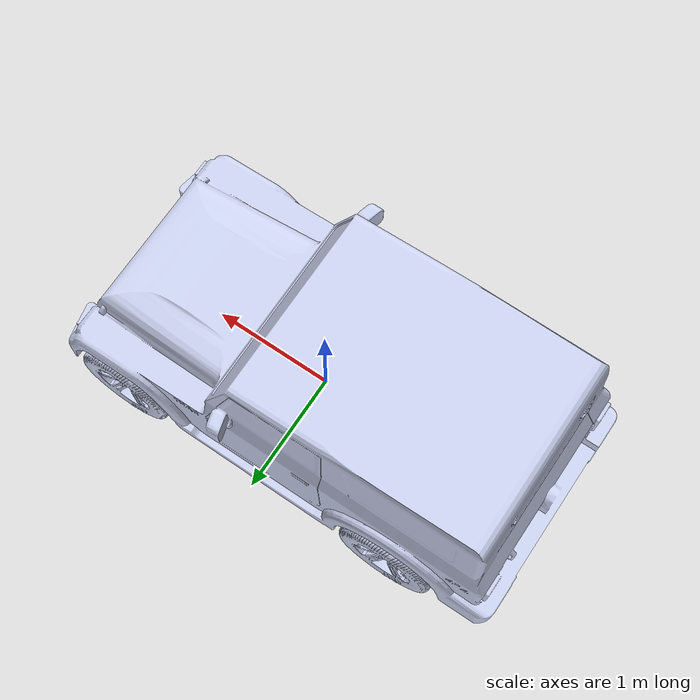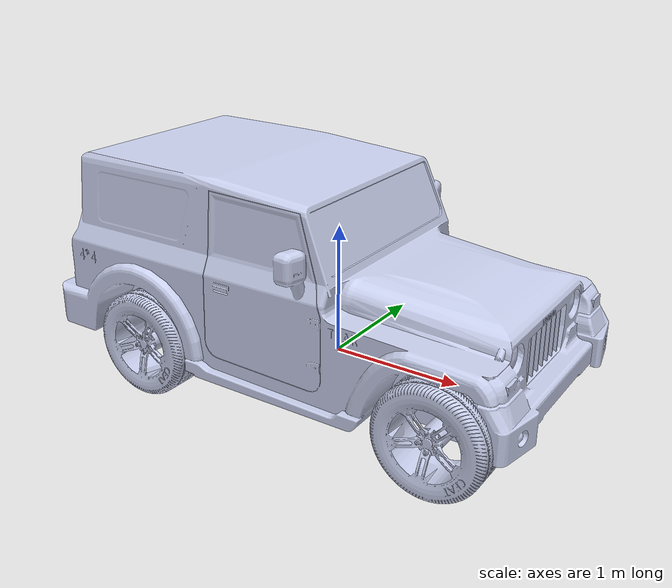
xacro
<?xml version="1.0"?>
<robot xmlns:xacro="http://www.ros.org/wiki/xacro">

  <!-- BASE LINK -->

  <link name="base_link">

  </link>

  <!-- BASE_FOOTPRINT LINK -->

  <joint name="base_footprint_joint" type="fixed">
      <parent link="base_link"/>
      <child link="base_footprint"/>
      <origin xyz="0 0 0" rpy="0 0 0"/>
  </joint>

  <link name="base_footprint">
  </link>

  <!-- CHASSIS LINK -->

  <joint name="chassis_joint" type="fixed">
      <parent link="base_link"/>
      <child link="chassis"/>
      <origin xyz="0 0 0"/>
  </joint>

  <link
    name="chassis">
    <inertial>
      <origin
        xyz="-0.342518803776331 -1.00740975131468E-05 0.646193378336512"
        rpy="0 0 0" />
      <mass
        value="6905.2626850428" />
      <inertia
        ixx="2659.62825070122"
        ixy="-0.15805324903843"
        ixz="662.778571016084"
        iyy="7167.3508600786"
        iyz="0.0119182372416493"
        izz="7690.48218945494" />
    </inertial>
    <visual>
      <origin
        xyz="0 0 0"
        rpy="0 0 0" />
      <geometry>
        <mesh
          filename="file:///home/rozy/thar_ws/src/thar_bot/meshes/base_link.STL" />
      </geometry>
      <material
        name="">
        <color
          rgba="0.792156862745098 0.819607843137255 0.933333333333333 1" />
      </material>
    </visual>
    <collision>
      <origin
        xyz="0 0 0"
        rpy="0 0 0" />
      <geometry>
        <mesh
          filename="file:///home/rozy/thar_ws/src/thar_bot/meshes/base_link.STL" />
      </geometry>
    </collision>
  </link>

  <!-- FRONT LEFT WHEEL LINK -->

  <joint name="frontleftwheeljoint" type="continuous">
    <parent link="chassis"/>
    <child link="front_left_wheel" />
    <origin
      xyz="1.2435 0.76338 0.09753"
      rpy="-1.5708 0 0" />
    <axis
      xyz="0 0 1" />
    <limit
      effort="150"
      velocity="50" />
    <dynamics
      damping="0.1"
      friction="0.2" />
  </joint>
  <link
    name="front_left_wheel">
    <inertial>
      <origin
        xyz="-4.08354209632256E-05 2.45620317269046E-05 0.0405625227917471"
        rpy="0 0 0" />
      <mass
        value="100.43204729493" />
      <inertia
        ixx="6.00052641085959"
        ixy="0.000326803380231443"
        ixz="0.000355730141146499"
        iyy="5.9998640075097"
        iyz="-0.000544177877578132"
        izz="10.3397497457468" />
    </inertial>
    <visual>
      <origin
        xyz="0 0 0"
        rpy="0 0 0" />
      <geometry>
        <mesh
          filename="file:///home/rozy/thar_ws/src/thar_bot/meshes/front_left_wheel.STL" />
      </geometry>
      <material
        name="">
        <color
          rgba="0.792156862745098 0.819607843137255 0.933333333333333 1" />
      </material>
    </visual>
    <collision>
      <origin
        xyz="0 0 0"
        rpy="0 0 0" />
      <geometry>
        <mesh
          filename="file:///home/rozy/thar_ws/src/thar_bot/meshes/front_left_wheel.STL" />
      </geometry>
    </collision>
  </link>

  <!-- FRONT RIGHT WHEEL LINK -->
  <joint
    name="frontrightwheeljoint"
    type="continuous">
    <origin
      xyz="1.2435 -0.76338 0.09753"
      rpy="1.5708 0 0" />
    <parent
      link="chassis"/>
    <child
      link="front_right_wheel" />
    <axis
      xyz="0 0 1" />
    <limit
      effort="150"
      velocity="50" />
    <dynamics
      damping="0.1"
      friction="0.2" />
  </joint>
  <link
    name="front_right_wheel">
    <inertial>
      <origin
        xyz="4.74852119726199E-05 -4.04340829274208E-06 0.040562520171751"
        rpy="0 0 0" />
      <mass
        value="100.43204391536" />
      <inertia
        ixx="6.00013897259221"
        ixy="0.000461886311756949"
        ixz="-0.000559222017905977"
        iyy="6.00025148034712"
        iyz="0.000331555968809409"
        izz="10.3397497647126" />
    </inertial>
    <visual>
      <origin
        xyz="0 0 0"
        rpy="0 0 0" />
      <geometry>
        <mesh
          filename="file:///home/rozy/thar_ws/src/thar_bot/meshes/front_right_wheel.STL" />
      </geometry>
      <material
        name="">
        <color
          rgba="0.792156862745098 0.819607843137255 0.933333333333333 1" />
      </material>
    </visual>
    <collision>
      <origin
        xyz="0 0 0"
        rpy="0 0 0" />
      <geometry>
        <mesh
          filename="file:///home/rozy/thar_ws/src/thar_bot/meshes/front_right_wheel.STL" />
      </geometry>
    </collision>
  </link>

  <!-- BACK LEFT WHEEL LINK -->
  <joint
    name="backleftwheeljoint"
    type="continuous">
    <origin
      xyz="-1.1532 0.76338 0.09753"
      rpy="-1.5708 0 0" />
    <parent
      link="chassis"/>
    <child
      link="back_left_wheel" />
    <axis
      xyz="0 0 1" />
    <limit
      effort="150"
      velocity="50" />
    <dynamics
      damping="0.1"
      friction="0.2" />
  </joint>
  <link
    name="back_left_wheel">
    <inertial>
      <origin
        xyz="-4.0835901066405E-05 2.45613640991738E-05 0.0405625233621417"
        rpy="0 0 0" />
      <mass
        value="100.432047806573" />
      <inertia
        ixx="6.000526414356"
        ixy="0.000326798122321776"
        ixz="0.000355735209098465"
        iyy="5.99986402586364"
        iyz="-0.000544169805288125"
        izz="10.3397497564812" />
    </inertial>
    <visual>
      <origin
        xyz="0 0 0"
        rpy="0 0 0" />
      <geometry>
        <mesh
          filename="file:///home/rozy/thar_ws/src/thar_bot/meshes/back_left_wheel.STL" />
      </geometry>
      <material
        name="">
        <color
          rgba="0.792156862745098 0.819607843137255 0.933333333333333 1" />
      </material>
    </visual>
    <collision>
      <origin
        xyz="0 0 0"
        rpy="0 0 0" />
      <geometry>
        <mesh
          filename="file:///home/rozy/thar_ws/src/thar_bot/meshes/back_left_wheel.STL" />
      </geometry>
    </collision>
  </link>

  <!-- BACK RIGHT WHEEL JOINT -->

  <joint
    name="backrightwheeljoint"
    type="continuous">
    <origin
      xyz="-1.1532 -0.76338 0.09753"
      rpy="1.5708 0 0" />
    <parent
      link="chassis"/>
    <child
      link="back_right_wheel" />
    <axis
      xyz="0 0 1" />
    <limit
      effort="150"
      velocity="50" />
    <dynamics
      damping="0.1"
      friction="0.2" />
  </joint>
  <link
    name="back_right_wheel">
    <inertial>
      <origin
        xyz="4.75996374711407E-05 2.34828695627742E-06 0.0405625210871466"
        rpy="0 0 0" />
      <mass
        value="100.432044739083" />
      <inertia
        ixx="6.00001845271663"
        ixy="0.000430366843601706"
        ixz="-0.000598583859064528"
        iyy="6.00037203810431"
        iyz="0.000253724838825604"
        izz="10.3397497842892" />
    </inertial>
    <visual>
      <origin
        xyz="0 0 0"
        rpy="0 0 0" />
      <geometry>
        <mesh
          filename="file:///home/rozy/thar_ws/src/thar_bot/meshes/back_right_wheel.STL" />
      </geometry>
      <material
        name="">
        <color
          rgba="0.792156862745098 0.819607843137255 0.933333333333333 1" />
      </material>
    </visual>
    <collision>
      <origin
        xyz="0 0 0"
        rpy="0 0 0" />
      <geometry>
        <mesh
          filename="file:///home/rozy/thar_ws/src/thar_bot/meshes/back_right_wheel.STL" />
      </geometry>
    </collision>
  </link>

</robot>
